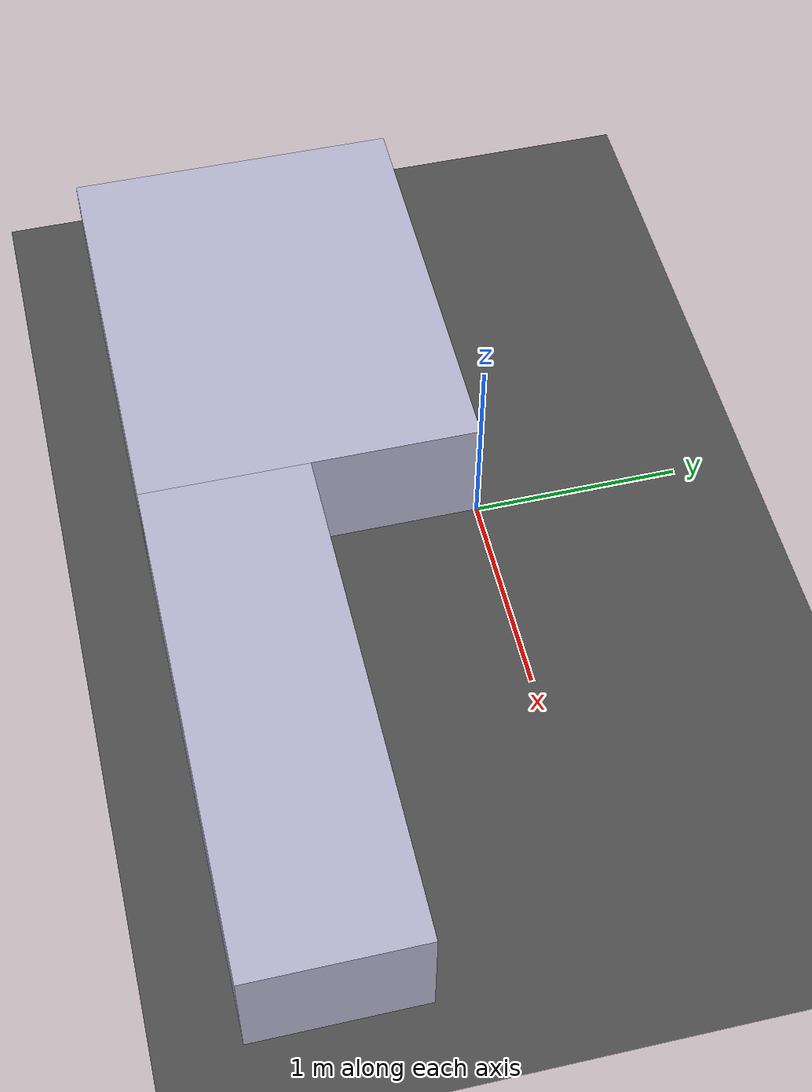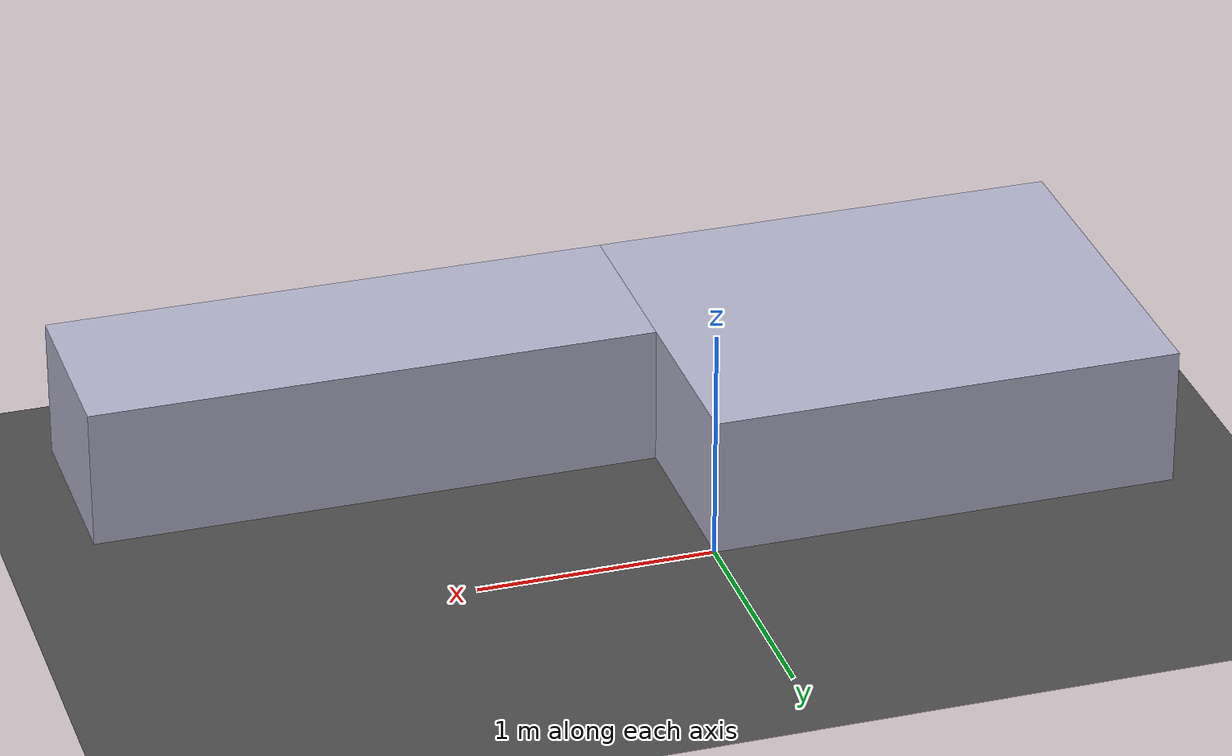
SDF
<?xml version="1.0"?>
<!-- One connected stepped solid wall in open space; no enclosing opposite wall. Dimensions are metres. -->
<sdf version="1.8">
  <world name="project1_open_track">
    <physics name="physics" type="ignored"><max_step_size>0.001</max_step_size><real_time_factor>1</real_time_factor></physics>
    <plugin filename="gz-sim-physics-system" name="gz::sim::systems::Physics"/>
    <plugin filename="gz-sim-user-commands-system" name="gz::sim::systems::UserCommands"/>
    <plugin filename="gz-sim-scene-broadcaster-system" name="gz::sim::systems::SceneBroadcaster"/>
    <plugin filename="gz-sim-sensors-system" name="gz::sim::systems::Sensors"><render_engine>ogre2</render_engine></plugin>
    <plugin filename="gz-sim-imu-system" name="gz::sim::systems::Imu"/>
    <scene><ambient>0.6 0.6 0.6 1</ambient><background>0.8 0.85 0.9 1</background><shadows>false</shadows></scene>
    <light name="sun" type="directional">
      <pose>0 0 10 0 0 0</pose><diffuse>0.8 0.8 0.8 1</diffuse>
      <specular>0.2 0.2 0.2 1</specular><direction>-0.3 0.1 -0.9</direction><cast_shadows>false</cast_shadows>
      <attenuation><range>1000</range><constant>0.9</constant><linear>0.01</linear><quadratic>0.001</quadratic></attenuation>
    </light>
    <model name="ground"><static>true</static><link name="ground">
      <collision name="collision"><geometry><plane><normal>0 0 1</normal><size>30 30</size></plane></geometry></collision>
      <visual name="visual"><geometry><plane><normal>0 0 1</normal><size>30 30</size></plane></geometry>
        <material><ambient>0.3 0.3 0.3 1</ambient><diffuse>0.3 0.3 0.3 1</diffuse></material></visual>
    </link></model>
    <model name="main_wall"><static>true</static><pose>-1 -0.8 0.3 0 0 0</pose><link name="wall">
      <collision name="collision"><geometry><box><size>2 1.6 0.6</size></box></geometry></collision>
      <visual name="visual"><geometry><box><size>2 1.6 0.6</size></box></geometry>
        <material><ambient>0.7 0.7 0.8 1</ambient><diffuse>0.7 0.7 0.8 1</diffuse></material></visual>
    </link></model>
    <model name="step_wall"><static>true</static><pose>1.2 -1.2 0.3 0 0 0</pose><link name="wall">
      <collision name="collision"><geometry><box><size>2.4 0.8 0.6</size></box></geometry></collision>
      <visual name="visual"><geometry><box><size>2.4 0.8 0.6</size></box></geometry>
        <material><ambient>0.7 0.7 0.8 1</ambient><diffuse>0.7 0.7 0.8 1</diffuse></material></visual>
    </link></model>
  </world>
</sdf>
